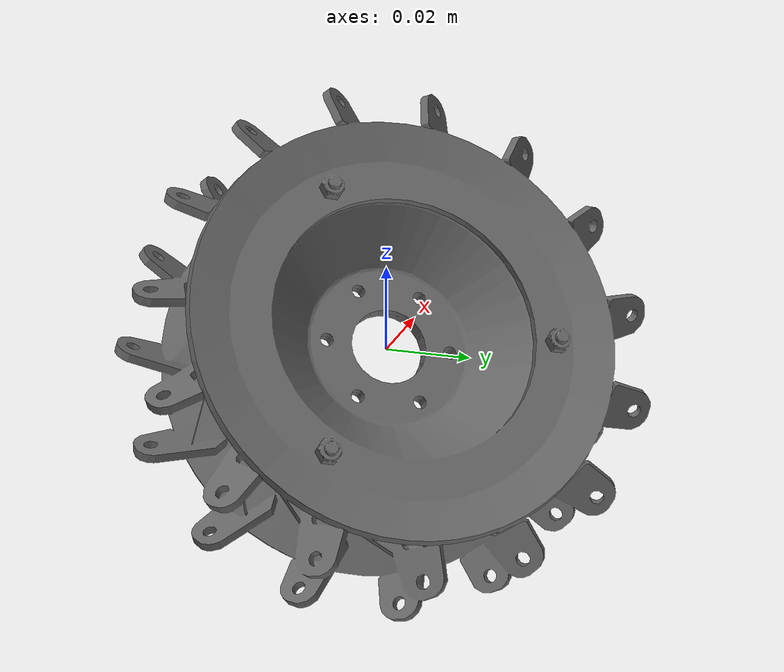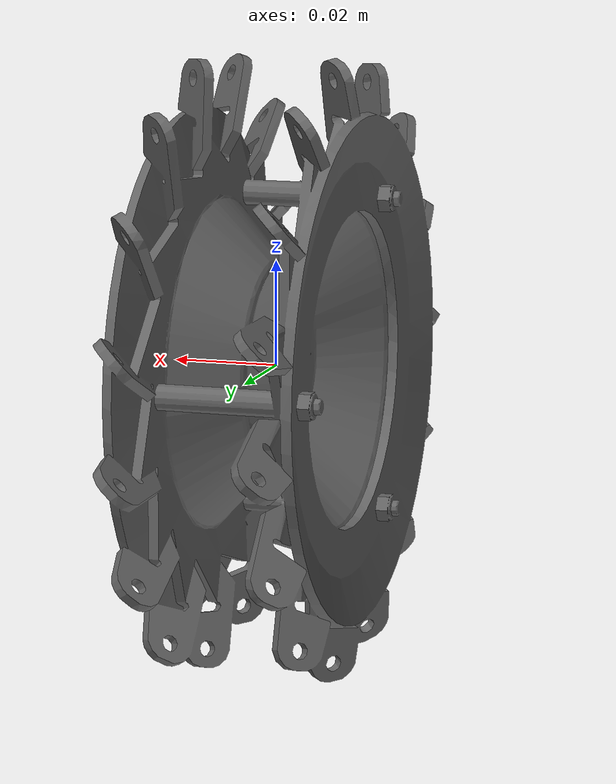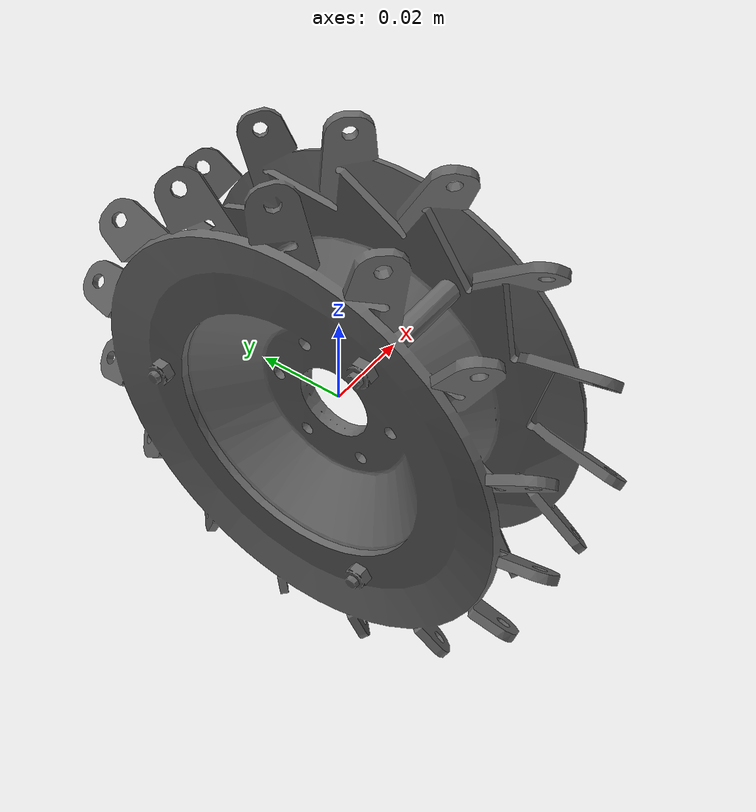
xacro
<?xml version="1.0"?>
<robot xmlns:xacro="http://www.ros.org/wiki/xacro" name="single_mecanum_wheel">

  <link name="wheel_link">
    <visual>
      <origin xyz="0 0 0" rpy="0 0 0"/>
      <geometry>
        <mesh filename="package://kuka_youbot/meshes/visual/wheel.dae" scale="0.6 0.6 0.6"/>
      </geometry>
    </visual>
  </link>

</robot>
